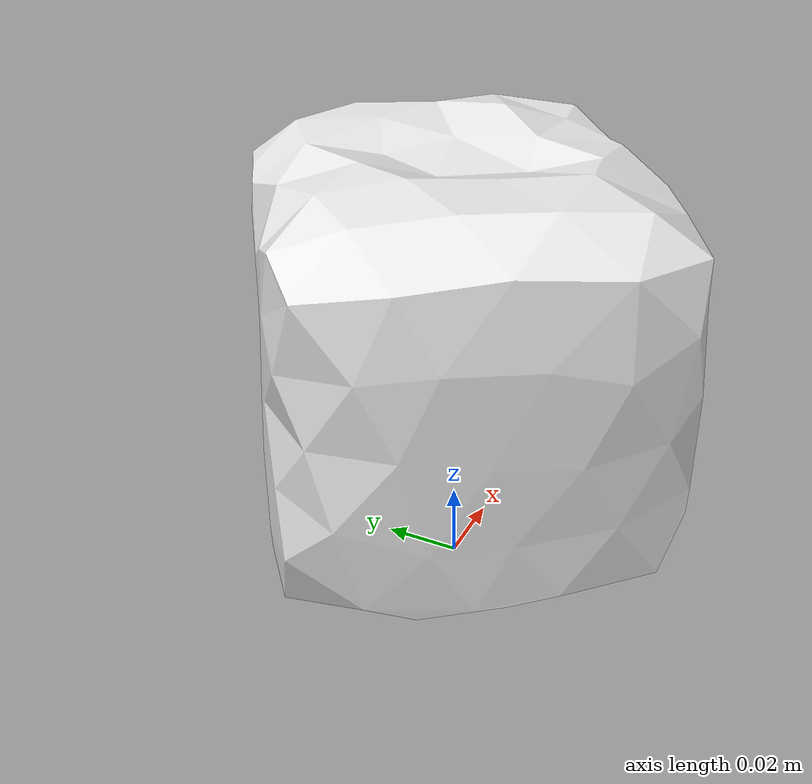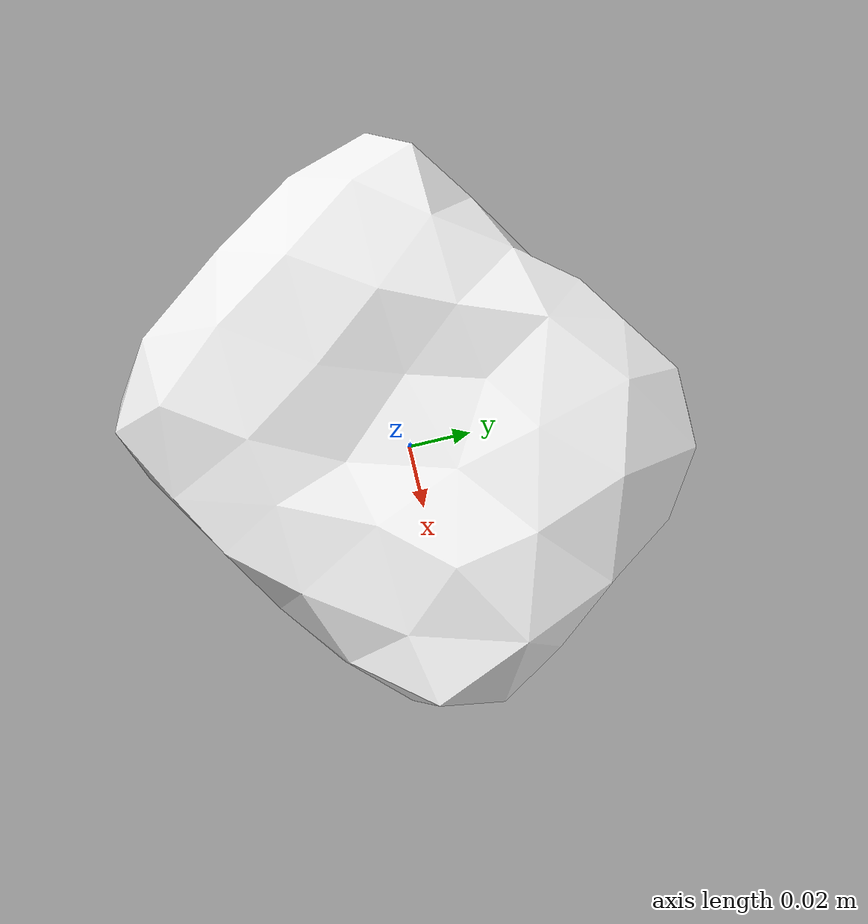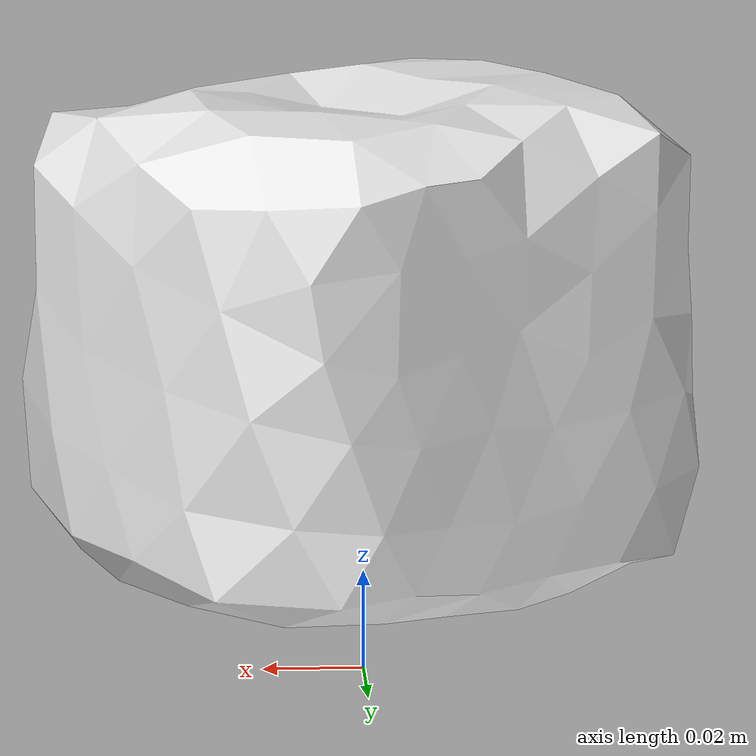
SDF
<?xml version="1.0" ?><sdf version="1.5"><model name="intel-box">
<link name="link">
<pose>0 0 0 0 0 0</pose>
<inertial>
<pose>0.000660498 -0.0012325 0.0672715 0 0 0</pose>
<mass>0.095</mass>
<inertia>
<ixx>0.000207081</ixx>
<ixy>0</ixy><iyy>0.000217994</iyy>
<ixz>0</ixz><iyz>0</iyz><izz>0.000265481</izz>
</inertia>
</inertial>
<visual name="visual">
<pose>0 0 0 0 0 0</pose>
<geometry><mesh><uri>model://intel-box/meshes/intel-box.dae</uri></mesh></geometry>
<material><script><uri>file://media/materials/scripts/gazebo.material</uri><name>Gazebo/WhiteGlow</name></script></material></visual>
<collision name="collision"><pose>0 0 0 0 0 0</pose><geometry><mesh><uri>model://intel-box/meshes/intel-box.dae</uri></mesh></geometry>
<surface><friction><ode><mu>1.000000</mu><mu2>1.000000</mu2></ode></friction></surface>
</collision></link></model></sdf>
